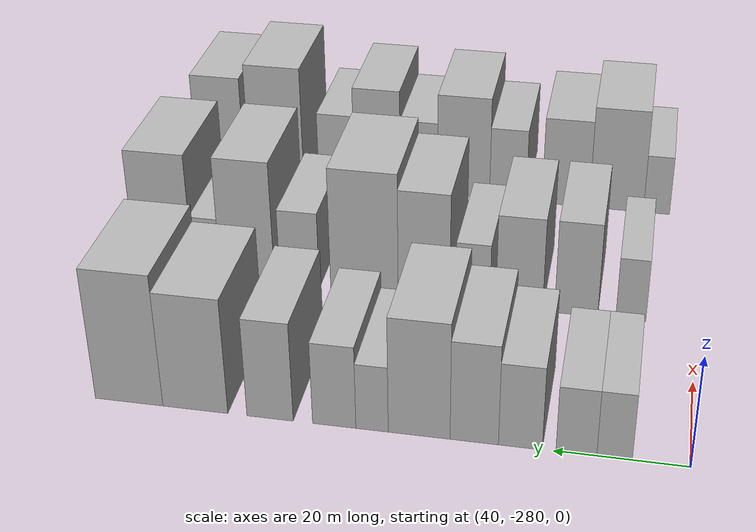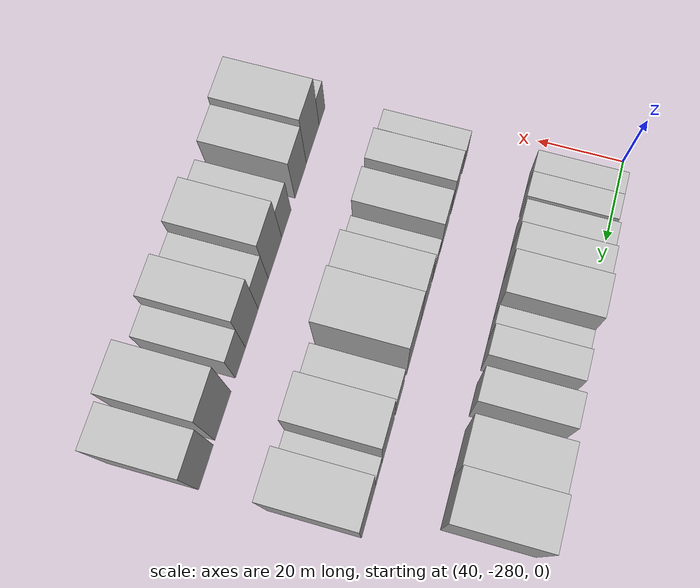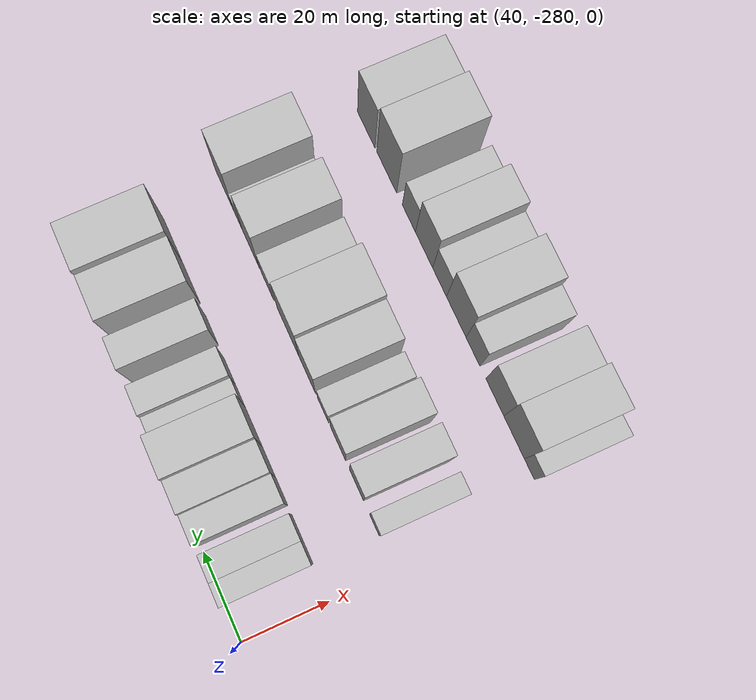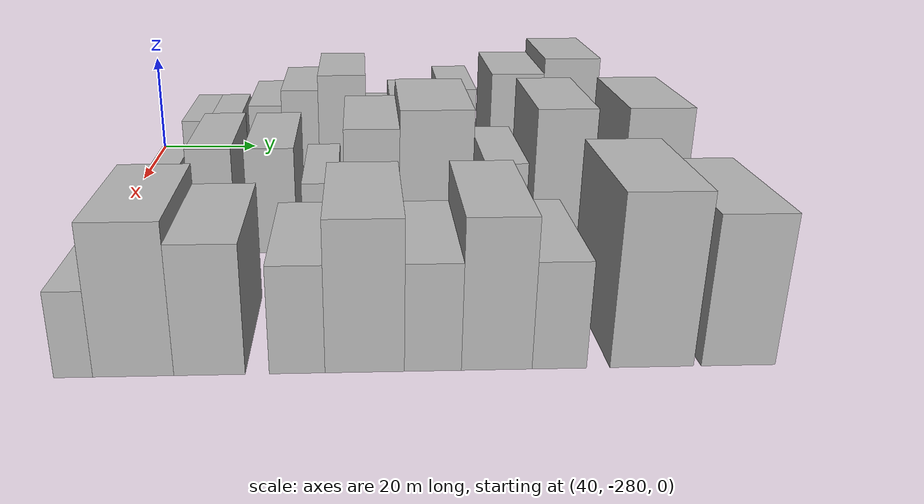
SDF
<sdf version="1.6">
 <world name="default">
  <model name="building_12">
   <static>1</static>
   <pose>50.0000 -269.0004 0 0.000000 0.000000 0.000000</pose>
   <link name="link">
    <pose>0 0 6.00 0 0 0</pose>
    <collision name="collision"><geometry><box><size>20.0000 5.1815 12.0000</size></box></geometry></collision>
    <visual name="visual">
     <cast_shadows>0</cast_shadows>
     <geometry><box><size>20.0000 5.1815 12.0000</size></box></geometry>
     <material>
      <script>
       <uri>model://HANNAS_wall/materials/scripts</uri>
       <uri>model://HANNAS_wall/materials/textures</uri>
       <name>vrc/HANNAS_wall</name>
      </script>
     </material>
    </visual>
   </link>
  </model>
  <model name="building_13">
   <static>1</static>
   <pose>50.0000 -263.4154 0 0.000000 0.000000 0.000000</pose>
   <link name="link">
    <pose>0 0 6.00 0 0 0</pose>
    <collision name="collision"><geometry><box><size>20.0000 5.9884 12.0000</size></box></geometry></collision>
    <visual name="visual">
     <cast_shadows>0</cast_shadows>
     <geometry><box><size>20.0000 5.9884 12.0000</size></box></geometry>
     <material>
      <script>
       <uri>model://HANNAS_wall/materials/scripts</uri>
       <uri>model://HANNAS_wall/materials/textures</uri>
       <name>vrc/HANNAS_wall</name>
      </script>
     </material>
    </visual>
   </link>
  </model>
  <model name="building_14">
   <static>1</static>
   <pose>50.0000 -255.1728 0 0.000000 0.000000 0.000000</pose>
   <link name="link">
    <pose>0 0 7.50 0 0 0</pose>
    <collision name="collision"><geometry><box><size>20.0000 6.4968 15.0000</size></box></geometry></collision>
    <visual name="visual">
     <cast_shadows>0</cast_shadows>
     <geometry><box><size>20.0000 6.4968 15.0000</size></box></geometry>
     <material>
      <script>
       <uri>model://HANNAS_wall/materials/scripts</uri>
       <uri>model://HANNAS_wall/materials/textures</uri>
       <name>vrc/HANNAS_wall</name>
      </script>
     </material>
    </visual>
   </link>
  </model>
  <model name="building_15">
   <static>1</static>
   <pose>50.0000 -248.3059 0 0.000000 0.000000 0.000000</pose>
   <link name="link">
    <pose>0 0 9.00 0 0 0</pose>
    <collision name="collision"><geometry><box><size>20.0000 7.2370 18.0000</size></box></geometry></collision>
    <visual name="visual">
     <cast_shadows>0</cast_shadows>
     <geometry><box><size>20.0000 7.2370 18.0000</size></box></geometry>
     <material>
      <script>
       <uri>model://HANNAS_wall/materials/scripts</uri>
       <uri>model://HANNAS_wall/materials/textures</uri>
       <name>vrc/HANNAS_wall</name>
      </script>
     </material>
    </visual>
   </link>
  </model>
  <model name="building_16">
   <static>1</static>
   <pose>50.0000 -240.0128 0 0.000000 0.000000 0.000000</pose>
   <link name="link">
    <pose>0 0 10.50 0 0 0</pose>
    <collision name="collision"><geometry><box><size>20.0000 9.3492 21.0000</size></box></geometry></collision>
    <visual name="visual">
     <cast_shadows>0</cast_shadows>
     <geometry><box><size>20.0000 9.3492 21.0000</size></box></geometry>
     <material>
      <script>
       <uri>model://HANNAS_wall/materials/scripts</uri>
       <uri>model://HANNAS_wall/materials/textures</uri>
       <name>vrc/HANNAS_wall</name>
      </script>
     </material>
    </visual>
   </link>
  </model>
  <model name="building_17">
   <static>1</static>
   <pose>50.0000 -232.8654 0 0.000000 0.000000 0.000000</pose>
   <link name="link">
    <pose>0 0 6.00 0 0 0</pose>
    <collision name="collision"><geometry><box><size>20.0000 4.9455 12.0000</size></box></geometry></collision>
    <visual name="visual">
     <cast_shadows>0</cast_shadows>
     <geometry><box><size>20.0000 4.9455 12.0000</size></box></geometry>
     <material>
      <script>
       <uri>model://HANNAS_wall/materials/scripts</uri>
       <uri>model://HANNAS_wall/materials/textures</uri>
       <name>vrc/HANNAS_wall</name>
      </script>
     </material>
    </visual>
   </link>
  </model>
  <model name="building_18">
   <static>1</static>
   <pose>50.0000 -227.0547 0 0.000000 0.000000 0.000000</pose>
   <link name="link">
    <pose>0 0 7.50 0 0 0</pose>
    <collision name="collision"><geometry><box><size>20.0000 6.6760 15.0000</size></box></geometry></collision>
    <visual name="visual">
     <cast_shadows>0</cast_shadows>
     <geometry><box><size>20.0000 6.6760 15.0000</size></box></geometry>
     <material>
      <script>
       <uri>model://HANNAS_wall/materials/scripts</uri>
       <uri>model://HANNAS_wall/materials/textures</uri>
       <name>vrc/HANNAS_wall</name>
      </script>
     </material>
    </visual>
   </link>
  </model>
  <model name="building_19">
   <static>1</static>
   <pose>50.0000 -217.1015 0 0.000000 0.000000 0.000000</pose>
   <link name="link">
    <pose>0 0 9.00 0 0 0</pose>
    <collision name="collision"><geometry><box><size>20.0000 7.2303 18.0000</size></box></geometry></collision>
    <visual name="visual">
     <cast_shadows>0</cast_shadows>
     <geometry><box><size>20.0000 7.2303 18.0000</size></box></geometry>
     <material>
      <script>
       <uri>model://HANNAS_wall/materials/scripts</uri>
       <uri>model://HANNAS_wall/materials/textures</uri>
       <name>vrc/HANNAS_wall</name>
      </script>
     </material>
    </visual>
   </link>
  </model>
  <model name="building_20">
   <static>1</static>
   <pose>50.0000 -205.3397 0 0.000000 0.000000 0.000000</pose>
   <link name="link">
    <pose>0 0 10.50 0 0 0</pose>
    <collision name="collision"><geometry><box><size>20.0000 10.2934 21.0000</size></box></geometry></collision>
    <visual name="visual">
     <cast_shadows>0</cast_shadows>
     <geometry><box><size>20.0000 10.2934 21.0000</size></box></geometry>
     <material>
      <script>
       <uri>model://HANNAS_wall/materials/scripts</uri>
       <uri>model://HANNAS_wall/materials/textures</uri>
       <name>vrc/HANNAS_wall</name>
      </script>
     </material>
    </visual>
   </link>
  </model>
  <model name="building_21">
   <static>1</static>
   <pose>50.0000 -194.7656 0 0.000000 0.000000 0.000000</pose>
   <link name="link">
    <pose>0 0 12.00 0 0 0</pose>
    <collision name="collision"><geometry><box><size>20.0000 10.8548 24.0000</size></box></geometry></collision>
    <visual name="visual">
     <cast_shadows>0</cast_shadows>
     <geometry><box><size>20.0000 10.8548 24.0000</size></box></geometry>
     <material>
      <script>
       <uri>model://HANNAS_wall/materials/scripts</uri>
       <uri>model://HANNAS_wall/materials/textures</uri>
       <name>vrc/HANNAS_wall</name>
      </script>
     </material>
    </visual>
   </link>
  </model>
  <model name="building_90">
   <static>1</static>
   <pose>85.0000 -269.5554 0 0.000000 0.000000 0.000000</pose>
   <link name="link">
    <pose>0 0 6.00 0 0 0</pose>
    <collision name="collision"><geometry><box><size>20.0000 4.9585 12.0000</size></box></geometry></collision>
    <visual name="visual">
     <cast_shadows>0</cast_shadows>
     <geometry><box><size>20.0000 4.9585 12.0000</size></box></geometry>
     <material>
      <script>
       <uri>model://HANNAS_wall/materials/scripts</uri>
       <uri>model://HANNAS_wall/materials/textures</uri>
       <name>vrc/HANNAS_wall</name>
      </script>
     </material>
    </visual>
   </link>
  </model>
  <model name="building_91">
   <static>1</static>
   <pose>85.0000 -260.4645 0 0.000000 0.000000 0.000000</pose>
   <link name="link">
    <pose>0 0 9.00 0 0 0</pose>
    <collision name="collision"><geometry><box><size>20.0000 7.2233 18.0000</size></box></geometry></collision>
    <visual name="visual">
     <cast_shadows>0</cast_shadows>
     <geometry><box><size>20.0000 7.2233 18.0000</size></box></geometry>
     <material>
      <script>
       <uri>model://HANNAS_wall/materials/scripts</uri>
       <uri>model://HANNAS_wall/materials/textures</uri>
       <name>vrc/HANNAS_wall</name>
      </script>
     </material>
    </visual>
   </link>
  </model>
  <model name="building_92">
   <static>1</static>
   <pose>85.0000 -250.8988 0 0.000000 0.000000 0.000000</pose>
   <link name="link">
    <pose>0 0 9.00 0 0 0</pose>
    <collision name="collision"><geometry><box><size>20.0000 7.9082 18.0000</size></box></geometry></collision>
    <visual name="visual">
     <cast_shadows>0</cast_shadows>
     <geometry><box><size>20.0000 7.9082 18.0000</size></box></geometry>
     <material>
      <script>
       <uri>model://HANNAS_wall/materials/scripts</uri>
       <uri>model://HANNAS_wall/materials/textures</uri>
       <name>vrc/HANNAS_wall</name>
      </script>
     </material>
    </visual>
   </link>
  </model>
  <model name="building_93">
   <static>1</static>
   <pose>85.0000 -243.0256 0 0.000000 0.000000 0.000000</pose>
   <link name="link">
    <pose>0 0 6.00 0 0 0</pose>
    <collision name="collision"><geometry><box><size>20.0000 5.8380 12.0000</size></box></geometry></collision>
    <visual name="visual">
     <cast_shadows>0</cast_shadows>
     <geometry><box><size>20.0000 5.8380 12.0000</size></box></geometry>
     <material>
      <script>
       <uri>model://HANNAS_wall/materials/scripts</uri>
       <uri>model://HANNAS_wall/materials/textures</uri>
       <name>vrc/HANNAS_wall</name>
      </script>
     </material>
    </visual>
   </link>
  </model>
  <model name="building_94">
   <static>1</static>
   <pose>85.0000 -234.6492 0 0.000000 0.000000 0.000000</pose>
   <link name="link">
    <pose>0 0 10.50 0 0 0</pose>
    <collision name="collision"><geometry><box><size>20.0000 8.9148 21.0000</size></box></geometry></collision>
    <visual name="visual">
     <cast_shadows>0</cast_shadows>
     <geometry><box><size>20.0000 8.9148 21.0000</size></box></geometry>
     <material>
      <script>
       <uri>model://HANNAS_wall/materials/scripts</uri>
       <uri>model://HANNAS_wall/materials/textures</uri>
       <name>vrc/HANNAS_wall</name>
      </script>
     </material>
    </visual>
   </link>
  </model>
  <model name="building_95">
   <static>1</static>
   <pose>85.0000 -224.3128 0 0.000000 0.000000 0.000000</pose>
   <link name="link">
    <pose>0 0 12.00 0 0 0</pose>
    <collision name="collision"><geometry><box><size>20.0000 11.7582 24.0000</size></box></geometry></collision>
    <visual name="visual">
     <cast_shadows>0</cast_shadows>
     <geometry><box><size>20.0000 11.7582 24.0000</size></box></geometry>
     <material>
      <script>
       <uri>model://HANNAS_wall/materials/scripts</uri>
       <uri>model://HANNAS_wall/materials/textures</uri>
       <name>vrc/HANNAS_wall</name>
      </script>
     </material>
    </visual>
   </link>
  </model>
  <model name="building_96">
   <static>1</static>
   <pose>85.0000 -212.9728 0 0.000000 0.000000 0.000000</pose>
   <link name="link">
    <pose>0 0 7.50 0 0 0</pose>
    <collision name="collision"><geometry><box><size>20.0000 6.9217 15.0000</size></box></geometry></collision>
    <visual name="visual">
     <cast_shadows>0</cast_shadows>
     <geometry><box><size>20.0000 6.9217 15.0000</size></box></geometry>
     <material>
      <script>
       <uri>model://HANNAS_wall/materials/scripts</uri>
       <uri>model://HANNAS_wall/materials/textures</uri>
       <name>vrc/HANNAS_wall</name>
      </script>
     </material>
    </visual>
   </link>
  </model>
  <model name="building_97">
   <static>1</static>
   <pose>85.0000 -203.6924 0 0.000000 0.000000 0.000000</pose>
   <link name="link">
    <pose>0 0 12.00 0 0 0</pose>
    <collision name="collision"><geometry><box><size>20.0000 9.6392 24.0000</size></box></geometry></collision>
    <visual name="visual">
     <cast_shadows>0</cast_shadows>
     <geometry><box><size>20.0000 9.6392 24.0000</size></box></geometry>
     <material>
      <script>
       <uri>model://HANNAS_wall/materials/scripts</uri>
       <uri>model://HANNAS_wall/materials/textures</uri>
       <name>vrc/HANNAS_wall</name>
      </script>
     </material>
    </visual>
   </link>
  </model>
  <model name="building_98">
   <static>1</static>
   <pose>85.0000 -196.4237 0 0.000000 0.000000 0.000000</pose>
   <link name="link">
    <pose>0 0 6.00 0 0 0</pose>
    <collision name="collision"><geometry><box><size>20.0000 4.8981 12.0000</size></box></geometry></collision>
    <visual name="visual">
     <cast_shadows>0</cast_shadows>
     <geometry><box><size>20.0000 4.8981 12.0000</size></box></geometry>
     <material>
      <script>
       <uri>model://HANNAS_wall/materials/scripts</uri>
       <uri>model://HANNAS_wall/materials/textures</uri>
       <name>vrc/HANNAS_wall</name>
      </script>
     </material>
    </visual>
   </link>
  </model>
  <model name="building_99">
   <static>1</static>
   <pose>85.0000 -188.7379 0 0.000000 0.000000 0.000000</pose>
   <link name="link">
    <pose>0 0 12.00 0 0 0</pose>
    <collision name="collision"><geometry><box><size>20.0000 10.4735 24.0000</size></box></geometry></collision>
    <visual name="visual">
     <cast_shadows>0</cast_shadows>
     <geometry><box><size>20.0000 10.4735 24.0000</size></box></geometry>
     <material>
      <script>
       <uri>model://HANNAS_wall/materials/scripts</uri>
       <uri>model://HANNAS_wall/materials/textures</uri>
       <name>vrc/HANNAS_wall</name>
      </script>
     </material>
    </visual>
   </link>
  </model>
  <model name="building_174">
   <static>1</static>
   <pose>120.0000 -272.5147 0 0.000000 0.000000 0.000000</pose>
   <link name="link">
    <pose>0 0 6.00 0 0 0</pose>
    <collision name="collision"><geometry><box><size>20.0000 4.8313 12.0000</size></box></geometry></collision>
    <visual name="visual">
     <cast_shadows>0</cast_shadows>
     <geometry><box><size>20.0000 4.8313 12.0000</size></box></geometry>
     <material>
      <script>
       <uri>model://HANNAS_wall/materials/scripts</uri>
       <uri>model://HANNAS_wall/materials/textures</uri>
       <name>vrc/HANNAS_wall</name>
      </script>
     </material>
    </visual>
   </link>
  </model>
  <model name="building_175">
   <static>1</static>
   <pose>120.0000 -265.0718 0 0.000000 0.000000 0.000000</pose>
   <link name="link">
    <pose>0 0 10.50 0 0 0</pose>
    <collision name="collision"><geometry><box><size>20.0000 10.0546 21.0000</size></box></geometry></collision>
    <visual name="visual">
     <cast_shadows>0</cast_shadows>
     <geometry><box><size>20.0000 10.0546 21.0000</size></box></geometry>
     <material>
      <script>
       <uri>model://HANNAS_wall/materials/scripts</uri>
       <uri>model://HANNAS_wall/materials/textures</uri>
       <name>vrc/HANNAS_wall</name>
      </script>
     </material>
    </visual>
   </link>
  </model>
  <model name="building_176">
   <static>1</static>
   <pose>120.0000 -255.5959 0 0.000000 0.000000 0.000000</pose>
   <link name="link">
    <pose>0 0 9.00 0 0 0</pose>
    <collision name="collision"><geometry><box><size>20.0000 8.8972 18.0000</size></box></geometry></collision>
    <visual name="visual">
     <cast_shadows>0</cast_shadows>
     <geometry><box><size>20.0000 8.8972 18.0000</size></box></geometry>
     <material>
      <script>
       <uri>model://HANNAS_wall/materials/scripts</uri>
       <uri>model://HANNAS_wall/materials/textures</uri>
       <name>vrc/HANNAS_wall</name>
      </script>
     </material>
    </visual>
   </link>
  </model>
  <model name="building_177">
   <static>1</static>
   <pose>120.0000 -244.6522 0 0.000000 0.000000 0.000000</pose>
   <link name="link">
    <pose>0 0 7.50 0 0 0</pose>
    <collision name="collision"><geometry><box><size>20.0000 6.9901 15.0000</size></box></geometry></collision>
    <visual name="visual">
     <cast_shadows>0</cast_shadows>
     <geometry><box><size>20.0000 6.9901 15.0000</size></box></geometry>
     <material>
      <script>
       <uri>model://HANNAS_wall/materials/scripts</uri>
       <uri>model://HANNAS_wall/materials/textures</uri>
       <name>vrc/HANNAS_wall</name>
      </script>
     </material>
    </visual>
   </link>
  </model>
  <model name="building_178">
   <static>1</static>
   <pose>120.0000 -236.1565 0 0.000000 0.000000 0.000000</pose>
   <link name="link">
    <pose>0 0 10.50 0 0 0</pose>
    <collision name="collision"><geometry><box><size>20.0000 10.0014 21.0000</size></box></geometry></collision>
    <visual name="visual">
     <cast_shadows>0</cast_shadows>
     <geometry><box><size>20.0000 10.0014 21.0000</size></box></geometry>
     <material>
      <script>
       <uri>model://HANNAS_wall/materials/scripts</uri>
       <uri>model://HANNAS_wall/materials/textures</uri>
       <name>vrc/HANNAS_wall</name>
      </script>
     </material>
    </visual>
   </link>
  </model>
  <model name="building_179">
   <static>1</static>
   <pose>120.0000 -227.5519 0 0.000000 0.000000 0.000000</pose>
   <link name="link">
    <pose>0 0 7.50 0 0 0</pose>
    <collision name="collision"><geometry><box><size>20.0000 7.2078 15.0000</size></box></geometry></collision>
    <visual name="visual">
     <cast_shadows>0</cast_shadows>
     <geometry><box><size>20.0000 7.2078 15.0000</size></box></geometry>
     <material>
      <script>
       <uri>model://HANNAS_wall/materials/scripts</uri>
       <uri>model://HANNAS_wall/materials/textures</uri>
       <name>vrc/HANNAS_wall</name>
      </script>
     </material>
    </visual>
   </link>
  </model>
  <model name="building_180">
   <static>1</static>
   <pose>120.0000 -219.4546 0 0.000000 0.000000 0.000000</pose>
   <link name="link">
    <pose>0 0 10.50 0 0 0</pose>
    <collision name="collision"><geometry><box><size>20.0000 8.9866 21.0000</size></box></geometry></collision>
    <visual name="visual">
     <cast_shadows>0</cast_shadows>
     <geometry><box><size>20.0000 8.9866 21.0000</size></box></geometry>
     <material>
      <script>
       <uri>model://HANNAS_wall/materials/scripts</uri>
       <uri>model://HANNAS_wall/materials/textures</uri>
       <name>vrc/HANNAS_wall</name>
      </script>
     </material>
    </visual>
   </link>
  </model>
  <model name="building_181">
   <static>1</static>
   <pose>120.0000 -211.4799 0 0.000000 0.000000 0.000000</pose>
   <link name="link">
    <pose>0 0 7.50 0 0 0</pose>
    <collision name="collision"><geometry><box><size>20.0000 6.9629 15.0000</size></box></geometry></collision>
    <visual name="visual">
     <cast_shadows>0</cast_shadows>
     <geometry><box><size>20.0000 6.9629 15.0000</size></box></geometry>
     <material>
      <script>
       <uri>model://HANNAS_wall/materials/scripts</uri>
       <uri>model://HANNAS_wall/materials/textures</uri>
       <name>vrc/HANNAS_wall</name>
      </script>
     </material>
    </visual>
   </link>
  </model>
  <model name="building_182">
   <static>1</static>
   <pose>120.0000 -199.6238 0 0.000000 0.000000 0.000000</pose>
   <link name="link">
    <pose>0 0 12.00 0 0 0</pose>
    <collision name="collision"><geometry><box><size>20.0000 10.7491 24.0000</size></box></geometry></collision>
    <visual name="visual">
     <cast_shadows>0</cast_shadows>
     <geometry><box><size>20.0000 10.7491 24.0000</size></box></geometry>
     <material>
      <script>
       <uri>model://HANNAS_wall/materials/scripts</uri>
       <uri>model://HANNAS_wall/materials/textures</uri>
       <name>vrc/HANNAS_wall</name>
      </script>
     </material>
    </visual>
   </link>
  </model>
  <model name="building_183">
   <static>1</static>
   <pose>120.0000 -188.4671 0 0.000000 0.000000 0.000000</pose>
   <link name="link">
    <pose>0 0 10.50 0 0 0</pose>
    <collision name="collision"><geometry><box><size>20.0000 9.5642 21.0000</size></box></geometry></collision>
    <visual name="visual">
     <cast_shadows>0</cast_shadows>
     <geometry><box><size>20.0000 9.5642 21.0000</size></box></geometry>
     <material>
      <script>
       <uri>model://HANNAS_wall/materials/scripts</uri>
       <uri>model://HANNAS_wall/materials/textures</uri>
       <name>vrc/HANNAS_wall</name>
      </script>
     </material>
    </visual>
   </link>
  </model>
 </world>
</sdf>
